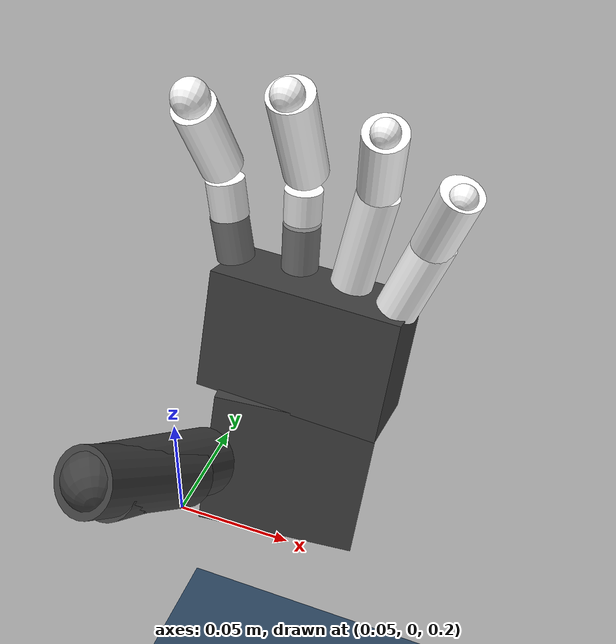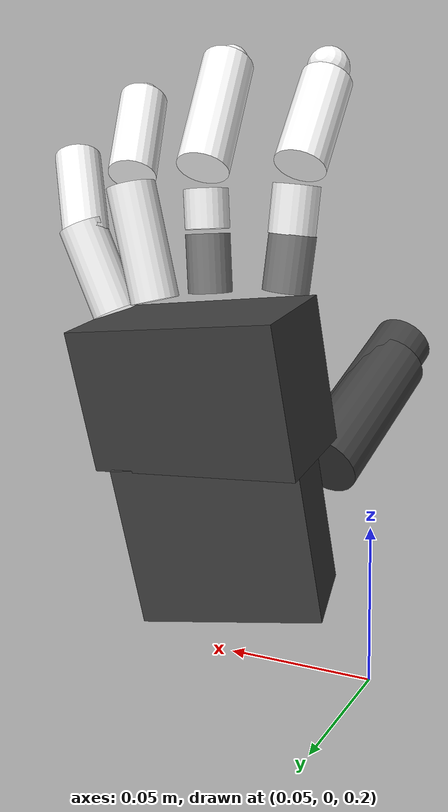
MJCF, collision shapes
<mujoco model="mia_hand_left scene">
  <include file="mia_hand_left.xml"/>

  <statistic extent="1" center="0.1 0 0.1"/>

  <visual>
    <headlight diffuse="0.6 0.6 0.6" ambient="0.3 0.3 0.3" specular="0 0 0"/>
    <rgba haze="0.15 0.25 0.35 1"/>
    <global azimuth="120" elevation="-20"/>
  </visual>

  <asset>
    <texture type="skybox" builtin="gradient" rgb1="0.3 0.5 0.7" rgb2="0 0 0"
      width="512" height="3072"/>
    <texture type="2d" name="groundplane" builtin="checker" mark="edge"
      rgb1="0.2 0.3 0.4" rgb2="0.1 0.2 0.3" markrgb="0.8 0.8 0.8" width="300" height="300"/>
    <material name="groundplane" texture="groundplane" texuniform="true"
      texrepeat="5 5" reflectance="0.2"/>
  </asset>

  <worldbody>
    <light pos="0 0 3" dir="0 0 -1" directional="true"/>
    <geom name="floor" size="0 0 0.125" type="plane" material="groundplane" conaffinity="15" condim="3"/>
  </worldbody>
</mujoco>

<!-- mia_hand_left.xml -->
<mujoco model="mia_hand_left">
  <compiler angle="radian" meshdir="assets/"/>

  <extension>
    <plugin plugin="mujoco.mia_hand.index_thumb_actuator">
      <instance name="index_thumb_actuator_l">
        <config key="index_flx_jnt_name" value="j_index_fle_l"/>
        <config key="thumb_opp_jnt_name" value="j_thumb_opp_l"/>
        <config key="thumb_opp_start_index_angle" value="-0.06"/>
        <config key="thumb_opp_end_index_angle" value="0.08"/>
      </instance>
    </plugin>
  </extension>

  <default>
    <default class="visual_l">
      <geom type="mesh" contype="0" conaffinity="0" group="0" density="0"/>
    </default>
    <default class="collision_l">
      <geom group="3"/>
    </default>
  </default>

  <asset>
    <mesh name="index_finger_mirrored" content_type="model/obj" file="index_finger_l.obj" scale="0.000999987 0.000999987 0.000999987"/>
    <mesh name="index_tip_mirrored" content_type="model/obj" file="index_tip_l.obj" scale="0.000999987 0.000999987 0.000999987"/>
    <mesh name="little_finger_mirrored" content_type="model/obj" file="little_finger_l.obj" scale="0.000999987 0.000999987 0.000999987"/>
    <mesh name="little_tip_mirrored" content_type="model/obj" file="little_tip_l.obj" scale="0.000999987 0.000999987 0.000999987"/>
    <mesh name="middle_finger_mirrored" content_type="model/obj" file="middle_finger_l.obj" scale="0.000999987 0.000999987 0.000999987"/>
    <mesh name="middle_tip_mirrored" content_type="model/obj" file="middle_tip_l.obj" scale="0.000999987 0.000999987 0.000999987"/>
    <mesh name="dorsum_simple_mirrored" content_type="model/obj" file="dorsum_simple_l.obj" scale="0.0766738 0.104275 0.0766738"/>
    <mesh name="palm_simple_mirrored" content_type="model/obj" file="palm_simple_l.obj" scale="0.122027 0.122027 0.122027"/>
    <mesh name="wrist_mirrored" content_type="model/obj" file="wrist_l.obj" scale="0.000999999 0.000999999 0.001"/>
    <mesh name="ring_finger_mirrored" content_type="model/obj" file="ring_finger_l.obj" scale="0.000999987 0.000999987 0.000999987"/>
    <mesh name="ring_tip_mirrored" content_type="model/obj" file="ring_tip_l.obj" scale="0.000999987 0.000999987 0.000999987"/>
    <mesh name="thumb_cover_mirrored" content_type="model/obj" file="thumb_cover_l.obj" scale="0.000999987 0.000999987 0.000999987"/>
    <mesh name="thumb_frame_mirrored" content_type="model/obj" file="thumb_frame_l.obj" scale="0.000999987 0.000999987 0.000999987"/>
    <mesh name="thumb_metacarpus_mirrored" content_type="model/obj" file="thumb_metacarpus_l.obj" scale="0.000999987 0.000999987 0.000999987"/>
  </asset>

  <worldbody>
    <body name="palm_l" pos="0.1 0 0.2" quat="0.000563312 0.000562864 0.707388 -0.706825">
      <inertial pos="0.00268 -0.0671 -0.016" quat="0.5 0.5 -0.5 0.5" mass="0.274006" diaginertia="0.000343 0.000301 0.00013"/>
      <geom class="visual_l" pos="0.00303524 -0.075372 -0.0252042" quat="0.991445 0.130526 0 0" rgba="0.0156863 0.0156863 0.0156863 1" mesh="dorsum_simple_mirrored"/>
      <geom class="visual_l" pos="0.00380023 -0.0659745 -0.0120549" quat="0.991445 0.130526 0 0" rgba="0.0156863 0.0156863 0.0156863 1" mesh="palm_simple_mirrored"/>
      <geom class="visual_l" pos="-0.04 -0.0152746 -0.0238927" quat="0.793353 -0.608761 0 0" rgba="0.25098 0.25098 0.25098 1" mesh="wrist_mirrored"/>
      <geom class="collision_l" name="collision_hand_distal_l" size="0.0363205 0.0237669 0.0166305" pos="0.000396326 -0.0951293 -0.021127" quat="0.991121 0.130355 0.00905396 -0.0246053" type="box" rgba="0.25098 0.25098 0.25098 1"/>
      <geom class="collision_l" name="collision_hand_proximal_l" size="0.0312073 0.0281913 0.0142893" pos="0.00128842 -0.0462266 -0.00568907" quat="0.986558 0.127037 -0.0954184 -0.0382022" type="box" rgba="0.25098 0.25098 0.25098 1"/>
      <body name="hand_ee_link_l" pos="0 -0.13 0.03" quat="0.947651 0.319309 0 0">
        <inertial pos="0 0 0" mass="0" diaginertia="0 0 0"/>
      </body>
      <body name="thumb_opp_l" pos="0.013074 -0.0681082 -0.00194942" quat="0.749742 -0.617038 0.239056 0.00192414">
        <inertial pos="0.00026099 -0.00762001 0.00121999" quat="0.5 0.5 -0.5 0.5" mass="0.013" diaginertia="1.15e-06 1.12e-06 1.2e-07"/>
        <joint name="j_thumb_opp_l" pos="0 0 0" axis="0 0 -1" range="-0.628 0" actuatorfrcrange="-3.5 3.5" damping="0.2"/>
        <geom class="visual_l" pos="-0.0545238 0.0486952 0.0273073" quat="0.970439 0.0331147 -0.188484 -0.147054" rgba="0.25098 0.25098 0.25098 1" mesh="thumb_metacarpus_mirrored"/>
        <body name="thumb_sensor_l" pos="-5.931e-06 -0.00899765 2.433e-06" quat="1 -9.935e-07 7.44999e-08 6.95001e-08">
          <inertial pos="-1.5e-08 9e-09 -4e-09" quat="0.707107 0.707107 0 0" mass="0.000643" diaginertia="1.5e-08 1.5e-08 8e-09"/>
          <body name="thumb_fle_l" pos="-2.7414e-05 -0.00898978 -1.0546e-05" quat="0.690237 0.153729 -0.690164 -0.15367">
            <inertial pos="0.0127715 -0.0295019 0.000170548" quat="0.500062 0.499938 -0.500114 0.499886" mass="0.0592001" diaginertia="4.1e-05 4e-05 3e-06"/>
            <joint name="j_thumb_fle_l" pos="0 0 0" axis="0 0 -1" range="0 1.1345" actuatorfrcrange="-3.5 3.5" damping="0.1"/>
            <geom class="visual_l" pos="-0.00356782 0.0719755 0.0544858" quat="0.827607 -0.198854 0.522145 0.0537452" rgba="1 1 1 1" mesh="thumb_cover_mirrored"/>
            <geom class="visual_l" pos="-0.00356782 0.0719755 0.0544858" quat="0.827607 -0.198854 0.522145 0.0537452" rgba="0.25098 0.25098 0.25098 1" mesh="thumb_frame_mirrored"/>
            <geom class="collision_l" name="collision_thumb_distal_l" size="0.0116941 0.0275092" pos="0.0156689 -0.0473847 0.0014039" quat="0.736368 -0.669124 0.0564767 0.0827358" type="cylinder" rgba="0.25098 0.25098 0.25098 1"/>
            <geom class="collision_l" name="collision_thumb_proximal_l" size="0.0127144 0.0299093" pos="0.0156133 -0.0326076 6.2183e-05" quat="0.707582 -0.695412 0.0575247 0.111445" type="cylinder" rgba="0.25098 0.25098 0.25098 1"/>
            <geom class="collision_l" name="collision_thumb_tip_l" size="0.0105148" pos="0.0157022 -0.069964 -0.000759777" quat="0.873883 0.262638 0.209606 -0.351306" rgba="0.25098 0.25098 0.25098 1"/>
          </body>
        </body>
      </body>
      <body name="index_fle_l" pos="0.0263055 -0.110217 -0.0215208" quat="0.745782 -0.0196446 0.660056 0.0880324">
        <inertial pos="-0.000420164 -0.00730602 0.000122763" quat="0.707107 0.707107 0 0" mass="0.0113" diaginertia="8.39e-07 8.39e-07 8.39e-07"/>
        <joint name="j_index_fle_l" pos="0 0 0" axis="0 0 -1" range="-1.4 1.4" actuatorfrcrange="-1.75 1.75" damping="0.1"/>
        <geom class="collision_l" name="collision_index_pre_sensor_l" size="0.0071285 0.00848527" pos="0.000159711 -0.023607 0.00150841" quat="0.513726 -0.530536 -0.469438 -0.483989" type="cylinder"/>
        <body name="index_sensor_l" pos="-0.000399264 -0.024237 -0.00018397" quat="0.996301 -0.000323171 -7.70693e-05 -0.0859352">
          <inertial pos="0 0 0" quat="0.554664 0.449921 -0.545354 0.438757" mass="0.01765" diaginertia="2.19001e-05 2.16199e-05 7.8994e-07"/>
          <geom class="visual_l" pos="-0.016737 0.126896 -0.0512699" quat="0.642105 -0.396242 -0.505804 -0.418157" rgba="0.0156863 0.0156863 0.0156863 1" mesh="index_finger_mirrored"/>
          <geom class="visual_l" pos="-0.016737 0.126896 -0.0512699" quat="0.642105 -0.396242 -0.505804 -0.418157" rgba="1 1 1 1" mesh="index_tip_mirrored"/>
          <geom class="collision_l" name="collision_index_distal_l" size="0.00795738 0.0151856" pos="-0.00189978 -0.0412638 0.00138145" quat="0.415019 -0.601436 -0.383289 -0.56491" type="cylinder" rgba="1 1 1 1"/>
          <geom class="collision_l" name="collision_index_post_sensor_l" size="0.0071285 0.00713106" pos="0.00270224 -0.0145998 0.00127784" quat="0.555422 -0.47484 -0.515383 -0.447676" type="cylinder" rgba="1 1 1 1"/>
          <geom class="collision_l" name="collision_index_tip_l" size="0.00662717" pos="-0.0104493 -0.0596592 0.000670582" quat="0.735087 -0.0767551 -0.646393 -0.189557" rgba="1 1 1 1"/>
        </body>
      </body>
      <body name="middle_fle_l" pos="0.00514942 -0.113555 -0.0243453" quat="0.706434 0.0308436 0.706434 0.0308435">
        <inertial pos="0 0 0" quat="0.707093 0.707107 0.00306118 0.00307185" mass="0.0121" diaginertia="1.42009e-06 1.3e-06 1.97908e-07"/>
        <joint name="j_mrl_fle_l" pos="0 0 0" axis="0 0 -1" range="0 1.39626" actuatorfrcrange="-1.75 1.75" damping="0.1"/>
        <geom class="collision_l" name="collision_middle_pre_sensor_l" size="0.00683449 0.00891176" pos="5.4868e-05 -0.0200986 0.000735957" quat="0.499613 -0.500386 -0.499613 -0.500386" type="cylinder"/>
        <body name="middle_sensor_l" pos="0.000444012 -0.0254975 5.81e-07" quat="1 -9e-09 1.035e-07 7.5e-09">
          <inertial pos="0 0 0" quat="0.547188 0.439409 -0.552842 0.4493" mass="0.0177" diaginertia="2.19002e-05 2.162e-05 7.89803e-07"/>
          <geom class="visual_l" pos="0.00767081 0.123443 -0.04515" quat="0.541675 -0.454519 -0.541675 -0.454519" rgba="0.0156863 0.0156863 0.0156863 1" mesh="middle_finger_mirrored"/>
          <geom class="visual_l" pos="0.00767081 0.123443 -0.04515" quat="0.541675 -0.454519 -0.541675 -0.454519" rgba="1 1 1 1" mesh="middle_tip_mirrored"/>
          <geom class="collision_l" name="collision_middle_distal_l" size="0.00812763 0.0191194" pos="-0.00865379 -0.0394251 0.00073538" quat="0.354525 -0.611811 -0.354525 -0.611811" type="cylinder" rgba="1 1 1 1"/>
          <geom class="collision_l" name="collision_middle_post_sensor_l" size="0.00683449 0.00591472" pos="-0.000414368 -0.0109209 0.00073538" quat="0.499613 -0.500386 -0.499613 -0.500386" type="cylinder" rgba="1 1 1 1"/>
          <geom class="collision_l" name="collision_middle_tip_l" size="0.00562753" pos="-0.0205398 -0.0564038 0.00073538" quat="0.682871 -0.183541 -0.682871 -0.183541" rgba="1 1 1 1"/>
        </body>
      </body>
      <body name="ring_fle_l" pos="-0.0122504 -0.112029 -0.0239364" quat="0.690637 0.0971483 0.716264 -0.0234157">
        <inertial pos="-0.00112 -0.0264 0.000203993" quat="0.5 0.5 -0.5 0.5" mass="0.0263" diaginertia="1.61e-05 1.577e-05 9.02e-07"/>
        <joint name="j_ring_fle_l" pos="0 0 0" axis="0 0 -1" range="0 1.39626" actuatorfrcrange="-1.75 1.75" damping="0.1"/>
        <geom class="visual_l" pos="0.0110461 0.090067 -0.0435588" quat="-0.488779 0.497506 0.582505 0.417457" rgba="0.0156863 0.0156863 0.0156863 1" mesh="ring_finger_mirrored"/>
        <geom class="visual_l" pos="0.0110461 0.090067 -0.0435588" quat="-0.488779 0.497506 0.582505 0.417457" rgba="1 1 1 1" mesh="ring_tip_mirrored"/>
        <geom class="collision_l" name="collision_ring_distal_l" size="0.00760354 0.0149668" pos="-0.00852139 -0.0632753 0.000219084" quat="-0.344487 0.614585 0.347078 0.618992" type="cylinder" rgba="1 1 1 1"/>
        <geom class="collision_l" name="collision_ring_proximal_l" size="0.00782782 0.0184141" pos="0.00118692 -0.0289251 0.000219103" quat="0.5 -0.5 -0.5 -0.5" type="cylinder" rgba="1 1 1 1"/>
        <geom class="collision_l" name="collision_ring_tip_l" size="0.00487311" pos="-0.0182312 -0.0766421 -0.000189719" quat="0.664463 -0.241845 -0.696364 -0.122788" rgba="1 1 1 1"/>
      </body>
      <body name="little_fle_l" pos="-0.02786 -0.107325 -0.0206051" quat="0.684193 0.193957 0.701244 -0.0501746">
        <inertial pos="-0.00155 -0.0208 -3.5805e-05" quat="0.5 0.5 -0.5 0.5" mass="0.0207" diaginertia="7.9e-06 7.686e-06 6.52e-07"/>
        <joint name="j_little_fle_l" pos="0 0 0" axis="0 0 -1" range="0 1.39626" actuatorfrcrange="-1.75 1.75" damping="0.1"/>
        <geom class="visual_l" pos="0.021799 0.0798844 -0.0421284" quat="0.424734 -0.570387 -0.586878 -0.387084" rgba="0.0156863 0.0156863 0.0156863 1" mesh="little_finger_mirrored"/>
        <geom class="visual_l" pos="0.021799 0.0798844 -0.0421284" quat="0.424734 -0.570387 -0.586878 -0.387084" rgba="1 1 1 1" mesh="little_tip_mirrored"/>
        <geom class="collision_l" name="collision_little_distal_l" size="0.00760354 0.0149668" pos="-0.00907162 -0.0523633 0.000405852" quat="0.378417 -0.606914 -0.369575 -0.593186" type="cylinder" rgba="1 1 1 1"/>
        <geom class="collision_l" name="collision_little_proximal_l" size="0.00782783 0.015221" pos="-0.00197874 -0.0273017 -4.4681e-05" quat="0.492576 -0.522025 -0.478044 -0.506292" type="cylinder" rgba="1 1 1 1"/>
        <geom class="collision_l" name="collision_little_tip_l" size="0.00484472" pos="-0.0165956 -0.064732 -0.000363795" quat="0.653774 -0.266396 -0.707705 -0.0276879" rgba="1 1 1 1"/>
      </body>
    </body>
  </worldbody>

  <equality>
    <joint joint1="j_ring_fle_l"   joint2="j_mrl_fle_l"/>
    <joint joint1="j_little_fle_l" joint2="j_mrl_fle_l"/>
  </equality>

  <contact>
    <exclude body1="palm_l" body2="thumb_fle_l"/>
    <exclude body1="palm_l" body2="thumb_opp_l"/>
    <exclude body1="palm_l" body2="index_fle_l"/>
    <exclude body1="palm_l" body2="middle_fle_l"/>
    <exclude body1="palm_l" body2="ring_fle_l"/>
    <exclude body1="palm_l" body2="little_fle_l"/>
  </contact>

  <actuator>
    <position name="thumb_fle_pos_l" joint="j_thumb_fle_l" inheritrange="1"/>
    <plugin name="index_fle_pos_l" joint="j_index_fle_l" plugin="mujoco.mia_hand.index_thumb_actuator" instance="index_thumb_actuator_l"/>
    <position name="mrl_fle_pos_l" joint="j_mrl_fle_l" inheritrange="1"/>
  </actuator>
</mujoco>
